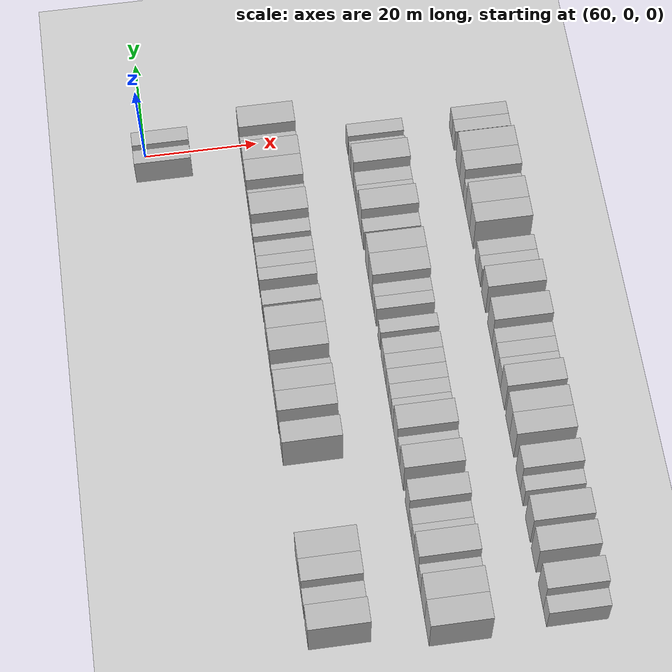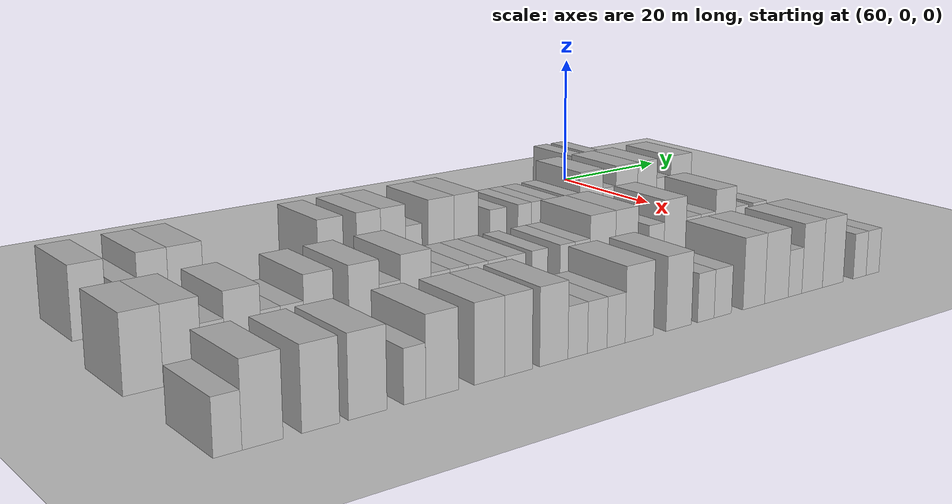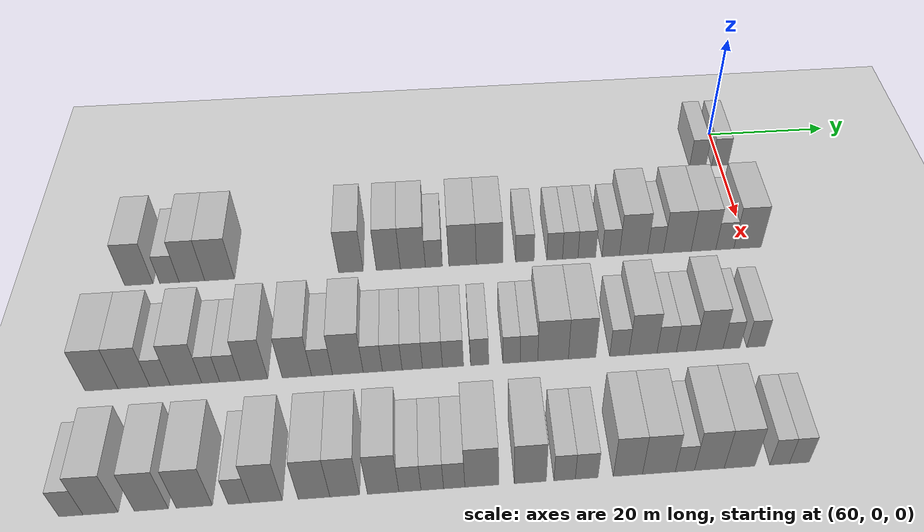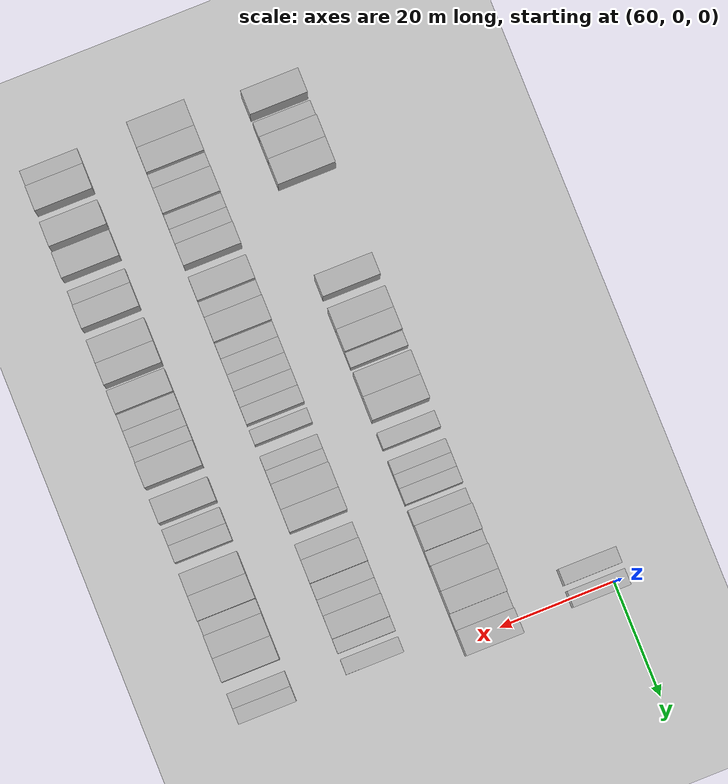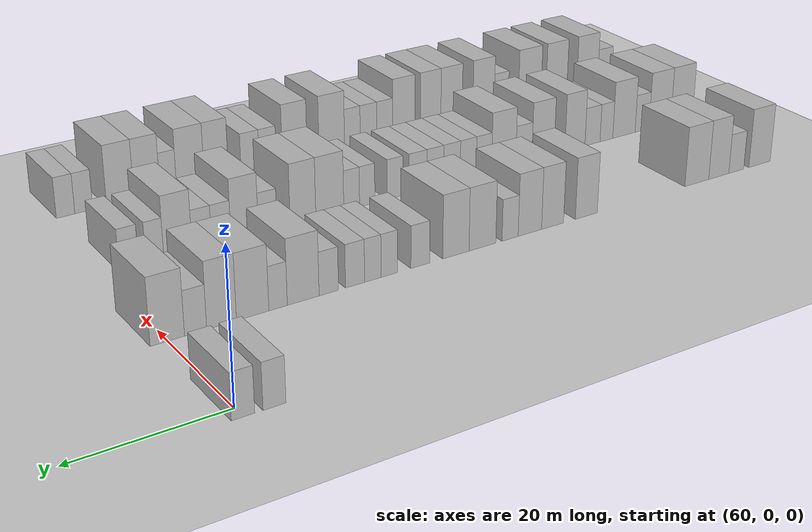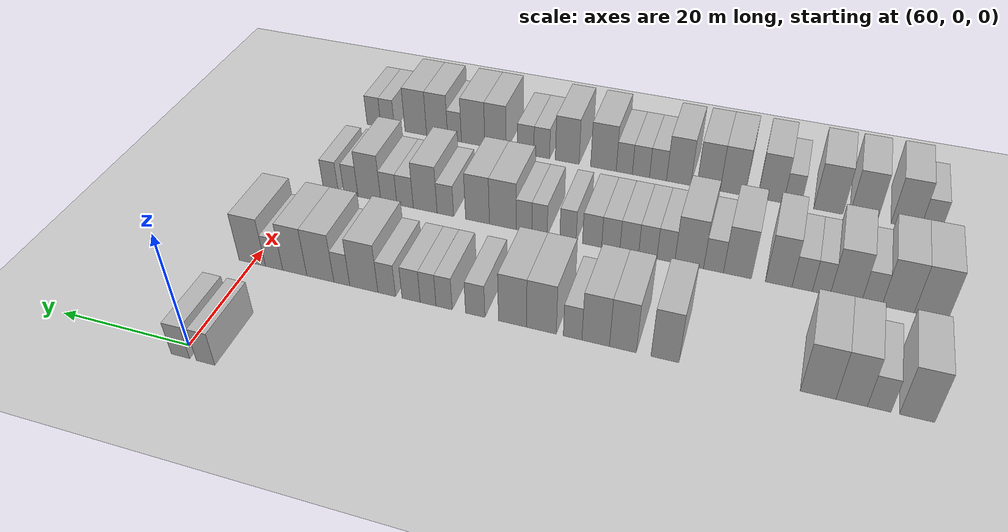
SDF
<sdf version="1.6">
 <world name="default">
  <include>
   <name>ground_plane_2</name>
   <uri>model://HANNAS_ground_plane</uri>
   <pose>100 0 0  0 0 0</pose>
  </include>
  <model name="building_424">
   <static>1</static>
   <pose>63.0000 -3.8232 0 0.000000 0.000000 0.000000</pose>
   <link name="link">
    <pose>0 0 3.00 0 0 0</pose>
    <collision name="collision"><geometry><box><size>10.0000 2.8093 6.0000</size></box></geometry></collision>
    <visual name="visual">
     <cast_shadows>0</cast_shadows>
     <geometry><box><size>10.0000 2.8093 6.0000</size></box></geometry>
     <material>
      <script>
       <uri>model://HANNAS_wall/materials/scripts</uri>
       <uri>model://HANNAS_wall/materials/textures</uri>
       <name>vrc/HANNAS_wall</name>
      </script>
     </material>
    </visual>
   </link>
  </model>
  <model name="building_425">
   <static>1</static>
   <pose>63.0000 -0.0105 0 0.000000 0.000000 0.000000</pose>
   <link name="link">
    <pose>0 0 3.00 0 0 0</pose>
    <collision name="collision"><geometry><box><size>10.0000 2.8162 6.0000</size></box></geometry></collision>
    <visual name="visual">
     <cast_shadows>0</cast_shadows>
     <geometry><box><size>10.0000 2.8162 6.0000</size></box></geometry>
     <material>
      <script>
       <uri>model://HANNAS_wall/materials/scripts</uri>
       <uri>model://HANNAS_wall/materials/textures</uri>
       <name>vrc/HANNAS_wall</name>
      </script>
     </material>
    </visual>
   </link>
  </model>
  <model name="building_573">
   <static>1</static>
   <pose>82.0000 -93.7773 0 0.000000 0.000000 0.000000</pose>
   <link name="link">
    <pose>0 0 4.50 0 0 0</pose>
    <collision name="collision"><geometry><box><size>10.0000 4.2342 9.0000</size></box></geometry></collision>
    <visual name="visual">
     <cast_shadows>0</cast_shadows>
     <geometry><box><size>10.0000 4.2342 9.0000</size></box></geometry>
     <material>
      <script>
       <uri>model://HANNAS_wall/materials/scripts</uri>
       <uri>model://HANNAS_wall/materials/textures</uri>
       <name>vrc/HANNAS_wall</name>
      </script>
     </material>
    </visual>
   </link>
  </model>
  <model name="building_574">
   <static>1</static>
   <pose>82.0000 -89.2112 0 0.000000 0.000000 0.000000</pose>
   <link name="link">
    <pose>0 0 3.00 0 0 0</pose>
    <collision name="collision"><geometry><box><size>10.0000 2.8981 6.0000</size></box></geometry></collision>
    <visual name="visual">
     <cast_shadows>0</cast_shadows>
     <geometry><box><size>10.0000 2.8981 6.0000</size></box></geometry>
     <material>
      <script>
       <uri>model://HANNAS_wall/materials/scripts</uri>
       <uri>model://HANNAS_wall/materials/textures</uri>
       <name>vrc/HANNAS_wall</name>
      </script>
     </material>
    </visual>
   </link>
  </model>
  <model name="building_575">
   <static>1</static>
   <pose>82.0000 -85.8382 0 0.000000 0.000000 0.000000</pose>
   <link name="link">
    <pose>0 0 4.50 0 0 0</pose>
    <collision name="collision"><geometry><box><size>10.0000 3.8478 9.0000</size></box></geometry></collision>
    <visual name="visual">
     <cast_shadows>0</cast_shadows>
     <geometry><box><size>10.0000 3.8478 9.0000</size></box></geometry>
     <material>
      <script>
       <uri>model://HANNAS_wall/materials/scripts</uri>
       <uri>model://HANNAS_wall/materials/textures</uri>
       <name>vrc/HANNAS_wall</name>
      </script>
     </material>
    </visual>
   </link>
  </model>
  <model name="building_576">
   <static>1</static>
   <pose>82.0000 -81.6765 0 0.000000 0.000000 0.000000</pose>
   <link name="link">
    <pose>0 0 4.50 0 0 0</pose>
    <collision name="collision"><geometry><box><size>10.0000 4.4756 9.0000</size></box></geometry></collision>
    <visual name="visual">
     <cast_shadows>0</cast_shadows>
     <geometry><box><size>10.0000 4.4756 9.0000</size></box></geometry>
     <material>
      <script>
       <uri>model://HANNAS_wall/materials/scripts</uri>
       <uri>model://HANNAS_wall/materials/textures</uri>
       <name>vrc/HANNAS_wall</name>
      </script>
     </material>
    </visual>
   </link>
  </model>
  <model name="building_577">
   <static>1</static>
   <pose>82.0000 -61.7908 0 0.000000 0.000000 0.000000</pose>
   <link name="link">
    <pose>0 0 4.50 0 0 0</pose>
    <collision name="collision"><geometry><box><size>10.0000 3.7653 9.0000</size></box></geometry></collision>
    <visual name="visual">
     <cast_shadows>0</cast_shadows>
     <geometry><box><size>10.0000 3.7653 9.0000</size></box></geometry>
     <material>
      <script>
       <uri>model://HANNAS_wall/materials/scripts</uri>
       <uri>model://HANNAS_wall/materials/textures</uri>
       <name>vrc/HANNAS_wall</name>
      </script>
     </material>
    </visual>
   </link>
  </model>
  <model name="building_578">
   <static>1</static>
   <pose>82.0000 -56.0667 0 0.000000 0.000000 0.000000</pose>
   <link name="link">
    <pose>0 0 4.50 0 0 0</pose>
    <collision name="collision"><geometry><box><size>10.0000 3.6829 9.0000</size></box></geometry></collision>
    <visual name="visual">
     <cast_shadows>0</cast_shadows>
     <geometry><box><size>10.0000 3.6829 9.0000</size></box></geometry>
     <material>
      <script>
       <uri>model://HANNAS_wall/materials/scripts</uri>
       <uri>model://HANNAS_wall/materials/textures</uri>
       <name>vrc/HANNAS_wall</name>
      </script>
     </material>
    </visual>
   </link>
  </model>
  <model name="building_579">
   <static>1</static>
   <pose>82.0000 -52.3001 0 0.000000 0.000000 0.000000</pose>
   <link name="link">
    <pose>0 0 4.50 0 0 0</pose>
    <collision name="collision"><geometry><box><size>10.0000 3.8504 9.0000</size></box></geometry></collision>
    <visual name="visual">
     <cast_shadows>0</cast_shadows>
     <geometry><box><size>10.0000 3.8504 9.0000</size></box></geometry>
     <material>
      <script>
       <uri>model://HANNAS_wall/materials/scripts</uri>
       <uri>model://HANNAS_wall/materials/textures</uri>
       <name>vrc/HANNAS_wall</name>
      </script>
     </material>
    </visual>
   </link>
  </model>
  <model name="building_580">
   <static>1</static>
   <pose>82.0000 -49.0666 0 0.000000 0.000000 0.000000</pose>
   <link name="link">
    <pose>0 0 3.00 0 0 0</pose>
    <collision name="collision"><geometry><box><size>10.0000 2.6167 6.0000</size></box></geometry></collision>
    <visual name="visual">
     <cast_shadows>0</cast_shadows>
     <geometry><box><size>10.0000 2.6167 6.0000</size></box></geometry>
     <material>
      <script>
       <uri>model://HANNAS_wall/materials/scripts</uri>
       <uri>model://HANNAS_wall/materials/textures</uri>
       <name>vrc/HANNAS_wall</name>
      </script>
     </material>
    </visual>
   </link>
  </model>
  <model name="building_581">
   <static>1</static>
   <pose>82.0000 -44.6354 0 0.000000 0.000000 0.000000</pose>
   <link name="link">
    <pose>0 0 4.50 0 0 0</pose>
    <collision name="collision"><geometry><box><size>10.0000 4.2456 9.0000</size></box></geometry></collision>
    <visual name="visual">
     <cast_shadows>0</cast_shadows>
     <geometry><box><size>10.0000 4.2456 9.0000</size></box></geometry>
     <material>
      <script>
       <uri>model://HANNAS_wall/materials/scripts</uri>
       <uri>model://HANNAS_wall/materials/textures</uri>
       <name>vrc/HANNAS_wall</name>
      </script>
     </material>
    </visual>
   </link>
  </model>
  <model name="building_582">
   <static>1</static>
   <pose>82.0000 -40.4692 0 0.000000 0.000000 0.000000</pose>
   <link name="link">
    <pose>0 0 4.50 0 0 0</pose>
    <collision name="collision"><geometry><box><size>10.0000 4.0868 9.0000</size></box></geometry></collision>
    <visual name="visual">
     <cast_shadows>0</cast_shadows>
     <geometry><box><size>10.0000 4.0868 9.0000</size></box></geometry>
     <material>
      <script>
       <uri>model://HANNAS_wall/materials/scripts</uri>
       <uri>model://HANNAS_wall/materials/textures</uri>
       <name>vrc/HANNAS_wall</name>
      </script>
     </material>
    </visual>
   </link>
  </model>
  <model name="building_583">
   <static>1</static>
   <pose>82.0000 -34.9957 0 0.000000 0.000000 0.000000</pose>
   <link name="link">
    <pose>0 0 3.00 0 0 0</pose>
    <collision name="collision"><geometry><box><size>10.0000 2.8603 6.0000</size></box></geometry></collision>
    <visual name="visual">
     <cast_shadows>0</cast_shadows>
     <geometry><box><size>10.0000 2.8603 6.0000</size></box></geometry>
     <material>
      <script>
       <uri>model://HANNAS_wall/materials/scripts</uri>
       <uri>model://HANNAS_wall/materials/textures</uri>
       <name>vrc/HANNAS_wall</name>
      </script>
     </material>
    </visual>
   </link>
  </model>
  <model name="building_584">
   <static>1</static>
   <pose>82.0000 -30.3475 0 0.000000 0.000000 0.000000</pose>
   <link name="link">
    <pose>0 0 3.00 0 0 0</pose>
    <collision name="collision"><geometry><box><size>10.0000 2.4360 6.0000</size></box></geometry></collision>
    <visual name="visual">
     <cast_shadows>0</cast_shadows>
     <geometry><box><size>10.0000 2.4360 6.0000</size></box></geometry>
     <material>
      <script>
       <uri>model://HANNAS_wall/materials/scripts</uri>
       <uri>model://HANNAS_wall/materials/textures</uri>
       <name>vrc/HANNAS_wall</name>
      </script>
     </material>
    </visual>
   </link>
  </model>
  <model name="building_585">
   <static>1</static>
   <pose>82.0000 -27.9281 0 0.000000 0.000000 0.000000</pose>
   <link name="link">
    <pose>0 0 3.00 0 0 0</pose>
    <collision name="collision"><geometry><box><size>10.0000 2.4027 6.0000</size></box></geometry></collision>
    <visual name="visual">
     <cast_shadows>0</cast_shadows>
     <geometry><box><size>10.0000 2.4027 6.0000</size></box></geometry>
     <material>
      <script>
       <uri>model://HANNAS_wall/materials/scripts</uri>
       <uri>model://HANNAS_wall/materials/textures</uri>
       <name>vrc/HANNAS_wall</name>
      </script>
     </material>
    </visual>
   </link>
  </model>
  <model name="building_586">
   <static>1</static>
   <pose>82.0000 -25.3410 0 0.000000 0.000000 0.000000</pose>
   <link name="link">
    <pose>0 0 3.00 0 0 0</pose>
    <collision name="collision"><geometry><box><size>10.0000 2.7716 6.0000</size></box></geometry></collision>
    <visual name="visual">
     <cast_shadows>0</cast_shadows>
     <geometry><box><size>10.0000 2.7716 6.0000</size></box></geometry>
     <material>
      <script>
       <uri>model://HANNAS_wall/materials/scripts</uri>
       <uri>model://HANNAS_wall/materials/textures</uri>
       <name>vrc/HANNAS_wall</name>
      </script>
     </material>
    </visual>
   </link>
  </model>
  <model name="building_587">
   <static>1</static>
   <pose>82.0000 -21.5829 0 0.000000 0.000000 0.000000</pose>
   <link name="link">
    <pose>0 0 3.00 0 0 0</pose>
    <collision name="collision"><geometry><box><size>10.0000 2.7446 6.0000</size></box></geometry></collision>
    <visual name="visual">
     <cast_shadows>0</cast_shadows>
     <geometry><box><size>10.0000 2.7446 6.0000</size></box></geometry>
     <material>
      <script>
       <uri>model://HANNAS_wall/materials/scripts</uri>
       <uri>model://HANNAS_wall/materials/textures</uri>
       <name>vrc/HANNAS_wall</name>
      </script>
     </material>
    </visual>
   </link>
  </model>
  <model name="building_588">
   <static>1</static>
   <pose>82.0000 -18.0006 0 0.000000 0.000000 0.000000</pose>
   <link name="link">
    <pose>0 0 4.50 0 0 0</pose>
    <collision name="collision"><geometry><box><size>10.0000 4.4201 9.0000</size></box></geometry></collision>
    <visual name="visual">
     <cast_shadows>0</cast_shadows>
     <geometry><box><size>10.0000 4.4201 9.0000</size></box></geometry>
     <material>
      <script>
       <uri>model://HANNAS_wall/materials/scripts</uri>
       <uri>model://HANNAS_wall/materials/textures</uri>
       <name>vrc/HANNAS_wall</name>
      </script>
     </material>
    </visual>
   </link>
  </model>
  <model name="building_589">
   <static>1</static>
   <pose>82.0000 -14.5273 0 0.000000 0.000000 0.000000</pose>
   <link name="link">
    <pose>0 0 3.00 0 0 0</pose>
    <collision name="collision"><geometry><box><size>10.0000 2.5265 6.0000</size></box></geometry></collision>
    <visual name="visual">
     <cast_shadows>0</cast_shadows>
     <geometry><box><size>10.0000 2.5265 6.0000</size></box></geometry>
     <material>
      <script>
       <uri>model://HANNAS_wall/materials/scripts</uri>
       <uri>model://HANNAS_wall/materials/textures</uri>
       <name>vrc/HANNAS_wall</name>
      </script>
     </material>
    </visual>
   </link>
  </model>
  <model name="building_590">
   <static>1</static>
   <pose>82.0000 -11.0879 0 0.000000 0.000000 0.000000</pose>
   <link name="link">
    <pose>0 0 4.50 0 0 0</pose>
    <collision name="collision"><geometry><box><size>10.0000 4.3523 9.0000</size></box></geometry></collision>
    <visual name="visual">
     <cast_shadows>0</cast_shadows>
     <geometry><box><size>10.0000 4.3523 9.0000</size></box></geometry>
     <material>
      <script>
       <uri>model://HANNAS_wall/materials/scripts</uri>
       <uri>model://HANNAS_wall/materials/textures</uri>
       <name>vrc/HANNAS_wall</name>
      </script>
     </material>
    </visual>
   </link>
  </model>
  <model name="building_591">
   <static>1</static>
   <pose>82.0000 -6.9554 0 0.000000 0.000000 0.000000</pose>
   <link name="link">
    <pose>0 0 4.50 0 0 0</pose>
    <collision name="collision"><geometry><box><size>10.0000 3.9128 9.0000</size></box></geometry></collision>
    <visual name="visual">
     <cast_shadows>0</cast_shadows>
     <geometry><box><size>10.0000 3.9128 9.0000</size></box></geometry>
     <material>
      <script>
       <uri>model://HANNAS_wall/materials/scripts</uri>
       <uri>model://HANNAS_wall/materials/textures</uri>
       <name>vrc/HANNAS_wall</name>
      </script>
     </material>
    </visual>
   </link>
  </model>
  <model name="building_592">
   <static>1</static>
   <pose>82.0000 -3.5650 0 0.000000 0.000000 0.000000</pose>
   <link name="link">
    <pose>0 0 3.00 0 0 0</pose>
    <collision name="collision"><geometry><box><size>10.0000 2.8680 6.0000</size></box></geometry></collision>
    <visual name="visual">
     <cast_shadows>0</cast_shadows>
     <geometry><box><size>10.0000 2.8680 6.0000</size></box></geometry>
     <material>
      <script>
       <uri>model://HANNAS_wall/materials/scripts</uri>
       <uri>model://HANNAS_wall/materials/textures</uri>
       <name>vrc/HANNAS_wall</name>
      </script>
     </material>
    </visual>
   </link>
  </model>
  <model name="building_593">
   <static>1</static>
   <pose>82.0000 0.0511 0 0.000000 0.000000 0.000000</pose>
   <link name="link">
    <pose>0 0 4.50 0 0 0</pose>
    <collision name="collision"><geometry><box><size>10.0000 4.3642 9.0000</size></box></geometry></collision>
    <visual name="visual">
     <cast_shadows>0</cast_shadows>
     <geometry><box><size>10.0000 4.3642 9.0000</size></box></geometry>
     <material>
      <script>
       <uri>model://HANNAS_wall/materials/scripts</uri>
       <uri>model://HANNAS_wall/materials/textures</uri>
       <name>vrc/HANNAS_wall</name>
      </script>
     </material>
    </visual>
   </link>
  </model>
  <model name="building_739">
   <static>1</static>
   <pose>101.0000 -95.6965 0 0.000000 0.000000 0.000000</pose>
   <link name="link">
    <pose>0 0 4.50 0 0 0</pose>
    <collision name="collision"><geometry><box><size>10.0000 4.4676 9.0000</size></box></geometry></collision>
    <visual name="visual">
     <cast_shadows>0</cast_shadows>
     <geometry><box><size>10.0000 4.4676 9.0000</size></box></geometry>
     <material>
      <script>
       <uri>model://HANNAS_wall/materials/scripts</uri>
       <uri>model://HANNAS_wall/materials/textures</uri>
       <name>vrc/HANNAS_wall</name>
      </script>
     </material>
    </visual>
   </link>
  </model>
  <model name="building_740">
   <static>1</static>
   <pose>101.0000 -91.2785 0 0.000000 0.000000 0.000000</pose>
   <link name="link">
    <pose>0 0 4.50 0 0 0</pose>
    <collision name="collision"><geometry><box><size>10.0000 4.3685 9.0000</size></box></geometry></collision>
    <visual name="visual">
     <cast_shadows>0</cast_shadows>
     <geometry><box><size>10.0000 4.3685 9.0000</size></box></geometry>
     <material>
      <script>
       <uri>model://HANNAS_wall/materials/scripts</uri>
       <uri>model://HANNAS_wall/materials/textures</uri>
       <name>vrc/HANNAS_wall</name>
      </script>
     </material>
    </visual>
   </link>
  </model>
  <model name="building_741">
   <static>1</static>
   <pose>101.0000 -87.7140 0 0.000000 0.000000 0.000000</pose>
   <link name="link">
    <pose>0 0 3.00 0 0 0</pose>
    <collision name="collision"><geometry><box><size>10.0000 2.7604 6.0000</size></box></geometry></collision>
    <visual name="visual">
     <cast_shadows>0</cast_shadows>
     <geometry><box><size>10.0000 2.7604 6.0000</size></box></geometry>
     <material>
      <script>
       <uri>model://HANNAS_wall/materials/scripts</uri>
       <uri>model://HANNAS_wall/materials/textures</uri>
       <name>vrc/HANNAS_wall</name>
      </script>
     </material>
    </visual>
   </link>
  </model>
  <model name="building_742">
   <static>1</static>
   <pose>101.0000 -84.1563 0 0.000000 0.000000 0.000000</pose>
   <link name="link">
    <pose>0 0 4.50 0 0 0</pose>
    <collision name="collision"><geometry><box><size>10.0000 4.3548 9.0000</size></box></geometry></collision>
    <visual name="visual">
     <cast_shadows>0</cast_shadows>
     <geometry><box><size>10.0000 4.3548 9.0000</size></box></geometry>
     <material>
      <script>
       <uri>model://HANNAS_wall/materials/scripts</uri>
       <uri>model://HANNAS_wall/materials/textures</uri>
       <name>vrc/HANNAS_wall</name>
      </script>
     </material>
    </visual>
   </link>
  </model>
  <model name="building_743">
   <static>1</static>
   <pose>101.0000 -80.7460 0 0.000000 0.000000 0.000000</pose>
   <link name="link">
    <pose>0 0 3.00 0 0 0</pose>
    <collision name="collision"><geometry><box><size>10.0000 2.4659 6.0000</size></box></geometry></collision>
    <visual name="visual">
     <cast_shadows>0</cast_shadows>
     <geometry><box><size>10.0000 2.4659 6.0000</size></box></geometry>
     <material>
      <script>
       <uri>model://HANNAS_wall/materials/scripts</uri>
       <uri>model://HANNAS_wall/materials/textures</uri>
       <name>vrc/HANNAS_wall</name>
      </script>
     </material>
    </visual>
   </link>
  </model>
  <model name="building_744">
   <static>1</static>
   <pose>101.0000 -78.0761 0 0.000000 0.000000 0.000000</pose>
   <link name="link">
    <pose>0 0 3.00 0 0 0</pose>
    <collision name="collision"><geometry><box><size>10.0000 2.8738 6.0000</size></box></geometry></collision>
    <visual name="visual">
     <cast_shadows>0</cast_shadows>
     <geometry><box><size>10.0000 2.8738 6.0000</size></box></geometry>
     <material>
      <script>
       <uri>model://HANNAS_wall/materials/scripts</uri>
       <uri>model://HANNAS_wall/materials/textures</uri>
       <name>vrc/HANNAS_wall</name>
      </script>
     </material>
    </visual>
   </link>
  </model>
  <model name="building_745">
   <static>1</static>
   <pose>101.0000 -74.7536 0 0.000000 0.000000 0.000000</pose>
   <link name="link">
    <pose>0 0 4.50 0 0 0</pose>
    <collision name="collision"><geometry><box><size>10.0000 3.7711 9.0000</size></box></geometry></collision>
    <visual name="visual">
     <cast_shadows>0</cast_shadows>
     <geometry><box><size>10.0000 3.7711 9.0000</size></box></geometry>
     <material>
      <script>
       <uri>model://HANNAS_wall/materials/scripts</uri>
       <uri>model://HANNAS_wall/materials/textures</uri>
       <name>vrc/HANNAS_wall</name>
      </script>
     </material>
    </visual>
   </link>
  </model>
  <model name="building_746">
   <static>1</static>
   <pose>101.0000 -68.8274 0 0.000000 0.000000 0.000000</pose>
   <link name="link">
    <pose>0 0 4.50 0 0 0</pose>
    <collision name="collision"><geometry><box><size>10.0000 4.0814 9.0000</size></box></geometry></collision>
    <visual name="visual">
     <cast_shadows>0</cast_shadows>
     <geometry><box><size>10.0000 4.0814 9.0000</size></box></geometry>
     <material>
      <script>
       <uri>model://HANNAS_wall/materials/scripts</uri>
       <uri>model://HANNAS_wall/materials/textures</uri>
       <name>vrc/HANNAS_wall</name>
      </script>
     </material>
    </visual>
   </link>
  </model>
  <model name="building_747">
   <static>1</static>
   <pose>101.0000 -65.3310 0 0.000000 0.000000 0.000000</pose>
   <link name="link">
    <pose>0 0 3.00 0 0 0</pose>
    <collision name="collision"><geometry><box><size>10.0000 2.9115 6.0000</size></box></geometry></collision>
    <visual name="visual">
     <cast_shadows>0</cast_shadows>
     <geometry><box><size>10.0000 2.9115 6.0000</size></box></geometry>
     <material>
      <script>
       <uri>model://HANNAS_wall/materials/scripts</uri>
       <uri>model://HANNAS_wall/materials/textures</uri>
       <name>vrc/HANNAS_wall</name>
      </script>
     </material>
    </visual>
   </link>
  </model>
  <model name="building_748">
   <static>1</static>
   <pose>101.0000 -61.7265 0 0.000000 0.000000 0.000000</pose>
   <link name="link">
    <pose>0 0 4.50 0 0 0</pose>
    <collision name="collision"><geometry><box><size>10.0000 4.2976 9.0000</size></box></geometry></collision>
    <visual name="visual">
     <cast_shadows>0</cast_shadows>
     <geometry><box><size>10.0000 4.2976 9.0000</size></box></geometry>
     <material>
      <script>
       <uri>model://HANNAS_wall/materials/scripts</uri>
       <uri>model://HANNAS_wall/materials/textures</uri>
       <name>vrc/HANNAS_wall</name>
      </script>
     </material>
    </visual>
   </link>
  </model>
  <model name="building_749">
   <static>1</static>
   <pose>101.0000 -58.2346 0 0.000000 0.000000 0.000000</pose>
   <link name="link">
    <pose>0 0 3.00 0 0 0</pose>
    <collision name="collision"><geometry><box><size>10.0000 2.6862 6.0000</size></box></geometry></collision>
    <visual name="visual">
     <cast_shadows>0</cast_shadows>
     <geometry><box><size>10.0000 2.6862 6.0000</size></box></geometry>
     <material>
      <script>
       <uri>model://HANNAS_wall/materials/scripts</uri>
       <uri>model://HANNAS_wall/materials/textures</uri>
       <name>vrc/HANNAS_wall</name>
      </script>
     </material>
    </visual>
   </link>
  </model>
  <model name="building_750">
   <static>1</static>
   <pose>101.0000 -55.5076 0 0.000000 0.000000 0.000000</pose>
   <link name="link">
    <pose>0 0 3.00 0 0 0</pose>
    <collision name="collision"><geometry><box><size>10.0000 2.7679 6.0000</size></box></geometry></collision>
    <visual name="visual">
     <cast_shadows>0</cast_shadows>
     <geometry><box><size>10.0000 2.7679 6.0000</size></box></geometry>
     <material>
      <script>
       <uri>model://HANNAS_wall/materials/scripts</uri>
       <uri>model://HANNAS_wall/materials/textures</uri>
       <name>vrc/HANNAS_wall</name>
      </script>
     </material>
    </visual>
   </link>
  </model>
  <model name="building_751">
   <static>1</static>
   <pose>101.0000 -52.6900 0 0.000000 0.000000 0.000000</pose>
   <link name="link">
    <pose>0 0 3.00 0 0 0</pose>
    <collision name="collision"><geometry><box><size>10.0000 2.8672 6.0000</size></box></geometry></collision>
    <visual name="visual">
     <cast_shadows>0</cast_shadows>
     <geometry><box><size>10.0000 2.8672 6.0000</size></box></geometry>
     <material>
      <script>
       <uri>model://HANNAS_wall/materials/scripts</uri>
       <uri>model://HANNAS_wall/materials/textures</uri>
       <name>vrc/HANNAS_wall</name>
      </script>
     </material>
    </visual>
   </link>
  </model>
  <model name="building_752">
   <static>1</static>
   <pose>101.0000 -49.8475 0 0.000000 0.000000 0.000000</pose>
   <link name="link">
    <pose>0 0 3.00 0 0 0</pose>
    <collision name="collision"><geometry><box><size>10.0000 2.8179 6.0000</size></box></geometry></collision>
    <visual name="visual">
     <cast_shadows>0</cast_shadows>
     <geometry><box><size>10.0000 2.8179 6.0000</size></box></geometry>
     <material>
      <script>
       <uri>model://HANNAS_wall/materials/scripts</uri>
       <uri>model://HANNAS_wall/materials/textures</uri>
       <name>vrc/HANNAS_wall</name>
      </script>
     </material>
    </visual>
   </link>
  </model>
  <model name="building_753">
   <static>1</static>
   <pose>101.0000 -46.9492 0 0.000000 0.000000 0.000000</pose>
   <link name="link">
    <pose>0 0 3.00 0 0 0</pose>
    <collision name="collision"><geometry><box><size>10.0000 2.9788 6.0000</size></box></geometry></collision>
    <visual name="visual">
     <cast_shadows>0</cast_shadows>
     <geometry><box><size>10.0000 2.9788 6.0000</size></box></geometry>
     <material>
      <script>
       <uri>model://HANNAS_wall/materials/scripts</uri>
       <uri>model://HANNAS_wall/materials/textures</uri>
       <name>vrc/HANNAS_wall</name>
      </script>
     </material>
    </visual>
   </link>
  </model>
  <model name="building_754">
   <static>1</static>
   <pose>101.0000 -43.1760 0 0.000000 0.000000 0.000000</pose>
   <link name="link">
    <pose>0 0 3.00 0 0 0</pose>
    <collision name="collision"><geometry><box><size>10.0000 2.5675 6.0000</size></box></geometry></collision>
    <visual name="visual">
     <cast_shadows>0</cast_shadows>
     <geometry><box><size>10.0000 2.5675 6.0000</size></box></geometry>
     <material>
      <script>
       <uri>model://HANNAS_wall/materials/scripts</uri>
       <uri>model://HANNAS_wall/materials/textures</uri>
       <name>vrc/HANNAS_wall</name>
      </script>
     </material>
    </visual>
   </link>
  </model>
  <model name="building_755">
   <static>1</static>
   <pose>101.0000 -38.6567 0 0.000000 0.000000 0.000000</pose>
   <link name="link">
    <pose>0 0 3.00 0 0 0</pose>
    <collision name="collision"><geometry><box><size>10.0000 2.4712 6.0000</size></box></geometry></collision>
    <visual name="visual">
     <cast_shadows>0</cast_shadows>
     <geometry><box><size>10.0000 2.4712 6.0000</size></box></geometry>
     <material>
      <script>
       <uri>model://HANNAS_wall/materials/scripts</uri>
       <uri>model://HANNAS_wall/materials/textures</uri>
       <name>vrc/HANNAS_wall</name>
      </script>
     </material>
    </visual>
   </link>
  </model>
  <model name="building_756">
   <static>1</static>
   <pose>101.0000 -36.1720 0 0.000000 0.000000 0.000000</pose>
   <link name="link">
    <pose>0 0 3.00 0 0 0</pose>
    <collision name="collision"><geometry><box><size>10.0000 2.4982 6.0000</size></box></geometry></collision>
    <visual name="visual">
     <cast_shadows>0</cast_shadows>
     <geometry><box><size>10.0000 2.4982 6.0000</size></box></geometry>
     <material>
      <script>
       <uri>model://HANNAS_wall/materials/scripts</uri>
       <uri>model://HANNAS_wall/materials/textures</uri>
       <name>vrc/HANNAS_wall</name>
      </script>
     </material>
    </visual>
   </link>
  </model>
  <model name="building_757">
   <static>1</static>
   <pose>101.0000 -32.7360 0 0.000000 0.000000 0.000000</pose>
   <link name="link">
    <pose>0 0 4.50 0 0 0</pose>
    <collision name="collision"><geometry><box><size>10.0000 4.3737 9.0000</size></box></geometry></collision>
    <visual name="visual">
     <cast_shadows>0</cast_shadows>
     <geometry><box><size>10.0000 4.3737 9.0000</size></box></geometry>
     <material>
      <script>
       <uri>model://HANNAS_wall/materials/scripts</uri>
       <uri>model://HANNAS_wall/materials/textures</uri>
       <name>vrc/HANNAS_wall</name>
      </script>
     </material>
    </visual>
   </link>
  </model>
  <model name="building_758">
   <static>1</static>
   <pose>101.0000 -28.5835 0 0.000000 0.000000 0.000000</pose>
   <link name="link">
    <pose>0 0 4.50 0 0 0</pose>
    <collision name="collision"><geometry><box><size>10.0000 3.9314 9.0000</size></box></geometry></collision>
    <visual name="visual">
     <cast_shadows>0</cast_shadows>
     <geometry><box><size>10.0000 3.9314 9.0000</size></box></geometry>
     <material>
      <script>
       <uri>model://HANNAS_wall/materials/scripts</uri>
       <uri>model://HANNAS_wall/materials/textures</uri>
       <name>vrc/HANNAS_wall</name>
      </script>
     </material>
    </visual>
   </link>
  </model>
  <model name="building_759">
   <static>1</static>
   <pose>101.0000 -23.2322 0 0.000000 0.000000 0.000000</pose>
   <link name="link">
    <pose>0 0 3.00 0 0 0</pose>
    <collision name="collision"><geometry><box><size>10.0000 2.7713 6.0000</size></box></geometry></collision>
    <visual name="visual">
     <cast_shadows>0</cast_shadows>
     <geometry><box><size>10.0000 2.7713 6.0000</size></box></geometry>
     <material>
      <script>
       <uri>model://HANNAS_wall/materials/scripts</uri>
       <uri>model://HANNAS_wall/materials/textures</uri>
       <name>vrc/HANNAS_wall</name>
      </script>
     </material>
    </visual>
   </link>
  </model>
  <model name="building_760">
   <static>1</static>
   <pose>101.0000 -19.8249 0 0.000000 0.000000 0.000000</pose>
   <link name="link">
    <pose>0 0 4.50 0 0 0</pose>
    <collision name="collision"><geometry><box><size>10.0000 4.0433 9.0000</size></box></geometry></collision>
    <visual name="visual">
     <cast_shadows>0</cast_shadows>
     <geometry><box><size>10.0000 4.0433 9.0000</size></box></geometry>
     <material>
      <script>
       <uri>model://HANNAS_wall/materials/scripts</uri>
       <uri>model://HANNAS_wall/materials/textures</uri>
       <name>vrc/HANNAS_wall</name>
      </script>
     </material>
    </visual>
   </link>
  </model>
  <model name="building_761">
   <static>1</static>
   <pose>101.0000 -16.3998 0 0.000000 0.000000 0.000000</pose>
   <link name="link">
    <pose>0 0 3.00 0 0 0</pose>
    <collision name="collision"><geometry><box><size>10.0000 2.8069 6.0000</size></box></geometry></collision>
    <visual name="visual">
     <cast_shadows>0</cast_shadows>
     <geometry><box><size>10.0000 2.8069 6.0000</size></box></geometry>
     <material>
      <script>
       <uri>model://HANNAS_wall/materials/scripts</uri>
       <uri>model://HANNAS_wall/materials/textures</uri>
       <name>vrc/HANNAS_wall</name>
      </script>
     </material>
    </visual>
   </link>
  </model>
  <model name="building_762">
   <static>1</static>
   <pose>101.0000 -13.6048 0 0.000000 0.000000 0.000000</pose>
   <link name="link">
    <pose>0 0 3.00 0 0 0</pose>
    <collision name="collision"><geometry><box><size>10.0000 2.7831 6.0000</size></box></geometry></collision>
    <visual name="visual">
     <cast_shadows>0</cast_shadows>
     <geometry><box><size>10.0000 2.7831 6.0000</size></box></geometry>
     <material>
      <script>
       <uri>model://HANNAS_wall/materials/scripts</uri>
       <uri>model://HANNAS_wall/materials/textures</uri>
       <name>vrc/HANNAS_wall</name>
      </script>
     </material>
    </visual>
   </link>
  </model>
  <model name="building_763">
   <static>1</static>
   <pose>101.0000 -10.2197 0 0.000000 0.000000 0.000000</pose>
   <link name="link">
    <pose>0 0 4.50 0 0 0</pose>
    <collision name="collision"><geometry><box><size>10.0000 3.9872 9.0000</size></box></geometry></collision>
    <visual name="visual">
     <cast_shadows>0</cast_shadows>
     <geometry><box><size>10.0000 3.9872 9.0000</size></box></geometry>
     <material>
      <script>
       <uri>model://HANNAS_wall/materials/scripts</uri>
       <uri>model://HANNAS_wall/materials/textures</uri>
       <name>vrc/HANNAS_wall</name>
      </script>
     </material>
    </visual>
   </link>
  </model>
  <model name="building_764">
   <static>1</static>
   <pose>101.0000 -6.9841 0 0.000000 0.000000 0.000000</pose>
   <link name="link">
    <pose>0 0 3.00 0 0 0</pose>
    <collision name="collision"><geometry><box><size>10.0000 2.4839 6.0000</size></box></geometry></collision>
    <visual name="visual">
     <cast_shadows>0</cast_shadows>
     <geometry><box><size>10.0000 2.4839 6.0000</size></box></geometry>
     <material>
      <script>
       <uri>model://HANNAS_wall/materials/scripts</uri>
       <uri>model://HANNAS_wall/materials/textures</uri>
       <name>vrc/HANNAS_wall</name>
      </script>
     </material>
    </visual>
   </link>
  </model>
  <model name="building_765">
   <static>1</static>
   <pose>101.0000 -3.4166 0 0.000000 0.000000 0.000000</pose>
   <link name="link">
    <pose>0 0 3.00 0 0 0</pose>
    <collision name="collision"><geometry><box><size>10.0000 2.6511 6.0000</size></box></geometry></collision>
    <visual name="visual">
     <cast_shadows>0</cast_shadows>
     <geometry><box><size>10.0000 2.6511 6.0000</size></box></geometry>
     <material>
      <script>
       <uri>model://HANNAS_wall/materials/scripts</uri>
       <uri>model://HANNAS_wall/materials/textures</uri>
       <name>vrc/HANNAS_wall</name>
      </script>
     </material>
    </visual>
   </link>
  </model>
  <model name="building_920">
   <static>1</static>
   <pose>120.0000 -95.8379 0 0.000000 0.000000 0.000000</pose>
   <link name="link">
    <pose>0 0 3.00 0 0 0</pose>
    <collision name="collision"><geometry><box><size>10.0000 2.9791 6.0000</size></box></geometry></collision>
    <visual name="visual">
     <cast_shadows>0</cast_shadows>
     <geometry><box><size>10.0000 2.9791 6.0000</size></box></geometry>
     <material>
      <script>
       <uri>model://HANNAS_wall/materials/scripts</uri>
       <uri>model://HANNAS_wall/materials/textures</uri>
       <name>vrc/HANNAS_wall</name>
      </script>
     </material>
    </visual>
   </link>
  </model>
  <model name="building_921">
   <static>1</static>
   <pose>120.0000 -92.1791 0 0.000000 0.000000 0.000000</pose>
   <link name="link">
    <pose>0 0 4.50 0 0 0</pose>
    <collision name="collision"><geometry><box><size>10.0000 4.3385 9.0000</size></box></geometry></collision>
    <visual name="visual">
     <cast_shadows>0</cast_shadows>
     <geometry><box><size>10.0000 4.3385 9.0000</size></box></geometry>
     <material>
      <script>
       <uri>model://HANNAS_wall/materials/scripts</uri>
       <uri>model://HANNAS_wall/materials/textures</uri>
       <name>vrc/HANNAS_wall</name>
      </script>
     </material>
    </visual>
   </link>
  </model>
  <model name="building_922">
   <static>1</static>
   <pose>120.0000 -85.8965 0 0.000000 0.000000 0.000000</pose>
   <link name="link">
    <pose>0 0 4.50 0 0 0</pose>
    <collision name="collision"><geometry><box><size>10.0000 4.2266 9.0000</size></box></geometry></collision>
    <visual name="visual">
     <cast_shadows>0</cast_shadows>
     <geometry><box><size>10.0000 4.2266 9.0000</size></box></geometry>
     <material>
      <script>
       <uri>model://HANNAS_wall/materials/scripts</uri>
       <uri>model://HANNAS_wall/materials/textures</uri>
       <name>vrc/HANNAS_wall</name>
      </script>
     </material>
    </visual>
   </link>
  </model>
  <model name="building_923">
   <static>1</static>
   <pose>120.0000 -80.5376 0 0.000000 0.000000 0.000000</pose>
   <link name="link">
    <pose>0 0 4.50 0 0 0</pose>
    <collision name="collision"><geometry><box><size>10.0000 4.4912 9.0000</size></box></geometry></collision>
    <visual name="visual">
     <cast_shadows>0</cast_shadows>
     <geometry><box><size>10.0000 4.4912 9.0000</size></box></geometry>
     <material>
      <script>
       <uri>model://HANNAS_wall/materials/scripts</uri>
       <uri>model://HANNAS_wall/materials/textures</uri>
       <name>vrc/HANNAS_wall</name>
      </script>
     </material>
    </visual>
   </link>
  </model>
  <model name="building_924">
   <static>1</static>
   <pose>120.0000 -74.9375 0 0.000000 0.000000 0.000000</pose>
   <link name="link">
    <pose>0 0 3.00 0 0 0</pose>
    <collision name="collision"><geometry><box><size>10.0000 2.7091 6.0000</size></box></geometry></collision>
    <visual name="visual">
     <cast_shadows>0</cast_shadows>
     <geometry><box><size>10.0000 2.7091 6.0000</size></box></geometry>
     <material>
      <script>
       <uri>model://HANNAS_wall/materials/scripts</uri>
       <uri>model://HANNAS_wall/materials/textures</uri>
       <name>vrc/HANNAS_wall</name>
      </script>
     </material>
    </visual>
   </link>
  </model>
  <model name="building_925">
   <static>1</static>
   <pose>120.0000 -71.5373 0 0.000000 0.000000 0.000000</pose>
   <link name="link">
    <pose>0 0 4.50 0 0 0</pose>
    <collision name="collision"><geometry><box><size>10.0000 4.0912 9.0000</size></box></geometry></collision>
    <visual name="visual">
     <cast_shadows>0</cast_shadows>
     <geometry><box><size>10.0000 4.0912 9.0000</size></box></geometry>
     <material>
      <script>
       <uri>model://HANNAS_wall/materials/scripts</uri>
       <uri>model://HANNAS_wall/materials/textures</uri>
       <name>vrc/HANNAS_wall</name>
      </script>
     </material>
    </visual>
   </link>
  </model>
  <model name="building_926">
   <static>1</static>
   <pose>120.0000 -65.4876 0 0.000000 0.000000 0.000000</pose>
   <link name="link">
    <pose>0 0 4.50 0 0 0</pose>
    <collision name="collision"><geometry><box><size>10.0000 4.0081 9.0000</size></box></geometry></collision>
    <visual name="visual">
     <cast_shadows>0</cast_shadows>
     <geometry><box><size>10.0000 4.0081 9.0000</size></box></geometry>
     <material>
      <script>
       <uri>model://HANNAS_wall/materials/scripts</uri>
       <uri>model://HANNAS_wall/materials/textures</uri>
       <name>vrc/HANNAS_wall</name>
      </script>
     </material>
    </visual>
   </link>
  </model>
  <model name="building_927">
   <static>1</static>
   <pose>120.0000 -61.5958 0 0.000000 0.000000 0.000000</pose>
   <link name="link">
    <pose>0 0 4.50 0 0 0</pose>
    <collision name="collision"><geometry><box><size>10.0000 3.7754 9.0000</size></box></geometry></collision>
    <visual name="visual">
     <cast_shadows>0</cast_shadows>
     <geometry><box><size>10.0000 3.7754 9.0000</size></box></geometry>
     <material>
      <script>
       <uri>model://HANNAS_wall/materials/scripts</uri>
       <uri>model://HANNAS_wall/materials/textures</uri>
       <name>vrc/HANNAS_wall</name>
      </script>
     </material>
    </visual>
   </link>
  </model>
  <model name="building_928">
   <static>1</static>
   <pose>120.0000 -56.7098 0 0.000000 0.000000 0.000000</pose>
   <link name="link">
    <pose>0 0 4.50 0 0 0</pose>
    <collision name="collision"><geometry><box><size>10.0000 3.9966 9.0000</size></box></geometry></collision>
    <visual name="visual">
     <cast_shadows>0</cast_shadows>
     <geometry><box><size>10.0000 3.9966 9.0000</size></box></geometry>
     <material>
      <script>
       <uri>model://HANNAS_wall/materials/scripts</uri>
       <uri>model://HANNAS_wall/materials/textures</uri>
       <name>vrc/HANNAS_wall</name>
      </script>
     </material>
    </visual>
   </link>
  </model>
  <model name="building_929">
   <static>1</static>
   <pose>120.0000 -53.2949 0 0.000000 0.000000 0.000000</pose>
   <link name="link">
    <pose>0 0 3.00 0 0 0</pose>
    <collision name="collision"><geometry><box><size>10.0000 2.8333 6.0000</size></box></geometry></collision>
    <visual name="visual">
     <cast_shadows>0</cast_shadows>
     <geometry><box><size>10.0000 2.8333 6.0000</size></box></geometry>
     <material>
      <script>
       <uri>model://HANNAS_wall/materials/scripts</uri>
       <uri>model://HANNAS_wall/materials/textures</uri>
       <name>vrc/HANNAS_wall</name>
      </script>
     </material>
    </visual>
   </link>
  </model>
  <model name="building_930">
   <static>1</static>
   <pose>120.0000 -50.4352 0 0.000000 0.000000 0.000000</pose>
   <link name="link">
    <pose>0 0 3.00 0 0 0</pose>
    <collision name="collision"><geometry><box><size>10.0000 2.8863 6.0000</size></box></geometry></collision>
    <visual name="visual">
     <cast_shadows>0</cast_shadows>
     <geometry><box><size>10.0000 2.8863 6.0000</size></box></geometry>
     <material>
      <script>
       <uri>model://HANNAS_wall/materials/scripts</uri>
       <uri>model://HANNAS_wall/materials/textures</uri>
       <name>vrc/HANNAS_wall</name>
      </script>
     </material>
    </visual>
   </link>
  </model>
  <model name="building_931">
   <static>1</static>
   <pose>120.0000 -47.6256 0 0.000000 0.000000 0.000000</pose>
   <link name="link">
    <pose>0 0 3.00 0 0 0</pose>
    <collision name="collision"><geometry><box><size>10.0000 2.7329 6.0000</size></box></geometry></collision>
    <visual name="visual">
     <cast_shadows>0</cast_shadows>
     <geometry><box><size>10.0000 2.7329 6.0000</size></box></geometry>
     <material>
      <script>
       <uri>model://HANNAS_wall/materials/scripts</uri>
       <uri>model://HANNAS_wall/materials/textures</uri>
       <name>vrc/HANNAS_wall</name>
      </script>
     </material>
    </visual>
   </link>
  </model>
  <model name="building_932">
   <static>1</static>
   <pose>120.0000 -44.0725 0 0.000000 0.000000 0.000000</pose>
   <link name="link">
    <pose>0 0 4.50 0 0 0</pose>
    <collision name="collision"><geometry><box><size>10.0000 4.3734 9.0000</size></box></geometry></collision>
    <visual name="visual">
     <cast_shadows>0</cast_shadows>
     <geometry><box><size>10.0000 4.3734 9.0000</size></box></geometry>
     <material>
      <script>
       <uri>model://HANNAS_wall/materials/scripts</uri>
       <uri>model://HANNAS_wall/materials/textures</uri>
       <name>vrc/HANNAS_wall</name>
      </script>
     </material>
    </visual>
   </link>
  </model>
  <model name="building_933">
   <static>1</static>
   <pose>120.0000 -37.8196 0 0.000000 0.000000 0.000000</pose>
   <link name="link">
    <pose>0 0 4.50 0 0 0</pose>
    <collision name="collision"><geometry><box><size>10.0000 4.1323 9.0000</size></box></geometry></collision>
    <visual name="visual">
     <cast_shadows>0</cast_shadows>
     <geometry><box><size>10.0000 4.1323 9.0000</size></box></geometry>
     <material>
      <script>
       <uri>model://HANNAS_wall/materials/scripts</uri>
       <uri>model://HANNAS_wall/materials/textures</uri>
       <name>vrc/HANNAS_wall</name>
      </script>
     </material>
    </visual>
   </link>
  </model>
  <model name="building_934">
   <static>1</static>
   <pose>120.0000 -33.3663 0 0.000000 0.000000 0.000000</pose>
   <link name="link">
    <pose>0 0 3.00 0 0 0</pose>
    <collision name="collision"><geometry><box><size>10.0000 2.7744 6.0000</size></box></geometry></collision>
    <visual name="visual">
     <cast_shadows>0</cast_shadows>
     <geometry><box><size>10.0000 2.7744 6.0000</size></box></geometry>
     <material>
      <script>
       <uri>model://HANNAS_wall/materials/scripts</uri>
       <uri>model://HANNAS_wall/materials/textures</uri>
       <name>vrc/HANNAS_wall</name>
      </script>
     </material>
    </visual>
   </link>
  </model>
  <model name="building_935">
   <static>1</static>
   <pose>120.0000 -30.4997 0 0.000000 0.000000 0.000000</pose>
   <link name="link">
    <pose>0 0 3.00 0 0 0</pose>
    <collision name="collision"><geometry><box><size>10.0000 2.9586 6.0000</size></box></geometry></collision>
    <visual name="visual">
     <cast_shadows>0</cast_shadows>
     <geometry><box><size>10.0000 2.9586 6.0000</size></box></geometry>
     <material>
      <script>
       <uri>model://HANNAS_wall/materials/scripts</uri>
       <uri>model://HANNAS_wall/materials/textures</uri>
       <name>vrc/HANNAS_wall</name>
      </script>
     </material>
    </visual>
   </link>
  </model>
  <model name="building_936">
   <static>1</static>
   <pose>120.0000 -25.1069 0 0.000000 0.000000 0.000000</pose>
   <link name="link">
    <pose>0 0 4.50 0 0 0</pose>
    <collision name="collision"><geometry><box><size>10.0000 3.8270 9.0000</size></box></geometry></collision>
    <visual name="visual">
     <cast_shadows>0</cast_shadows>
     <geometry><box><size>10.0000 3.8270 9.0000</size></box></geometry>
     <material>
      <script>
       <uri>model://HANNAS_wall/materials/scripts</uri>
       <uri>model://HANNAS_wall/materials/textures</uri>
       <name>vrc/HANNAS_wall</name>
      </script>
     </material>
    </visual>
   </link>
  </model>
  <model name="building_937">
   <static>1</static>
   <pose>120.0000 -21.0417 0 0.000000 0.000000 0.000000</pose>
   <link name="link">
    <pose>0 0 4.50 0 0 0</pose>
    <collision name="collision"><geometry><box><size>10.0000 4.3034 9.0000</size></box></geometry></collision>
    <visual name="visual">
     <cast_shadows>0</cast_shadows>
     <geometry><box><size>10.0000 4.3034 9.0000</size></box></geometry>
     <material>
      <script>
       <uri>model://HANNAS_wall/materials/scripts</uri>
       <uri>model://HANNAS_wall/materials/textures</uri>
       <name>vrc/HANNAS_wall</name>
      </script>
     </material>
    </visual>
   </link>
  </model>
  <model name="building_938">
   <static>1</static>
   <pose>120.0000 -17.6241 0 0.000000 0.000000 0.000000</pose>
   <link name="link">
    <pose>0 0 3.00 0 0 0</pose>
    <collision name="collision"><geometry><box><size>10.0000 2.5318 6.0000</size></box></geometry></collision>
    <visual name="visual">
     <cast_shadows>0</cast_shadows>
     <geometry><box><size>10.0000 2.5318 6.0000</size></box></geometry>
     <material>
      <script>
       <uri>model://HANNAS_wall/materials/scripts</uri>
       <uri>model://HANNAS_wall/materials/textures</uri>
       <name>vrc/HANNAS_wall</name>
      </script>
     </material>
    </visual>
   </link>
  </model>
  <model name="building_939">
   <static>1</static>
   <pose>120.0000 -14.3960 0 0.000000 0.000000 0.000000</pose>
   <link name="link">
    <pose>0 0 4.50 0 0 0</pose>
    <collision name="collision"><geometry><box><size>10.0000 3.9245 9.0000</size></box></geometry></collision>
    <visual name="visual">
     <cast_shadows>0</cast_shadows>
     <geometry><box><size>10.0000 3.9245 9.0000</size></box></geometry>
     <material>
      <script>
       <uri>model://HANNAS_wall/materials/scripts</uri>
       <uri>model://HANNAS_wall/materials/textures</uri>
       <name>vrc/HANNAS_wall</name>
      </script>
     </material>
    </visual>
   </link>
  </model>
  <model name="building_940">
   <static>1</static>
   <pose>120.0000 -10.4007 0 0.000000 0.000000 0.000000</pose>
   <link name="link">
    <pose>0 0 4.50 0 0 0</pose>
    <collision name="collision"><geometry><box><size>10.0000 4.0659 9.0000</size></box></geometry></collision>
    <visual name="visual">
     <cast_shadows>0</cast_shadows>
     <geometry><box><size>10.0000 4.0659 9.0000</size></box></geometry>
     <material>
      <script>
       <uri>model://HANNAS_wall/materials/scripts</uri>
       <uri>model://HANNAS_wall/materials/textures</uri>
       <name>vrc/HANNAS_wall</name>
      </script>
     </material>
    </visual>
   </link>
  </model>
  <model name="building_941">
   <static>1</static>
   <pose>120.0000 -5.0697 0 0.000000 0.000000 0.000000</pose>
   <link name="link">
    <pose>0 0 3.00 0 0 0</pose>
    <collision name="collision"><geometry><box><size>10.0000 2.5961 6.0000</size></box></geometry></collision>
    <visual name="visual">
     <cast_shadows>0</cast_shadows>
     <geometry><box><size>10.0000 2.5961 6.0000</size></box></geometry>
     <material>
      <script>
       <uri>model://HANNAS_wall/materials/scripts</uri>
       <uri>model://HANNAS_wall/materials/textures</uri>
       <name>vrc/HANNAS_wall</name>
      </script>
     </material>
    </visual>
   </link>
  </model>
  <model name="building_942">
   <static>1</static>
   <pose>120.0000 -2.4489 0 0.000000 0.000000 0.000000</pose>
   <link name="link">
    <pose>0 0 3.00 0 0 0</pose>
    <collision name="collision"><geometry><box><size>10.0000 2.6454 6.0000</size></box></geometry></collision>
    <visual name="visual">
     <cast_shadows>0</cast_shadows>
     <geometry><box><size>10.0000 2.6454 6.0000</size></box></geometry>
     <material>
      <script>
       <uri>model://HANNAS_wall/materials/scripts</uri>
       <uri>model://HANNAS_wall/materials/textures</uri>
       <name>vrc/HANNAS_wall</name>
      </script>
     </material>
    </visual>
   </link>
  </model>
 </world>
</sdf>
